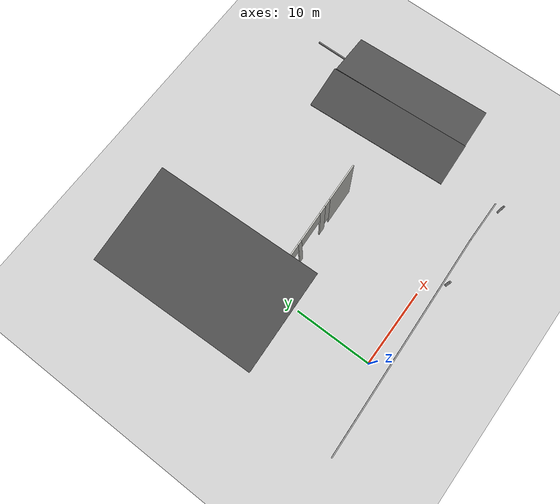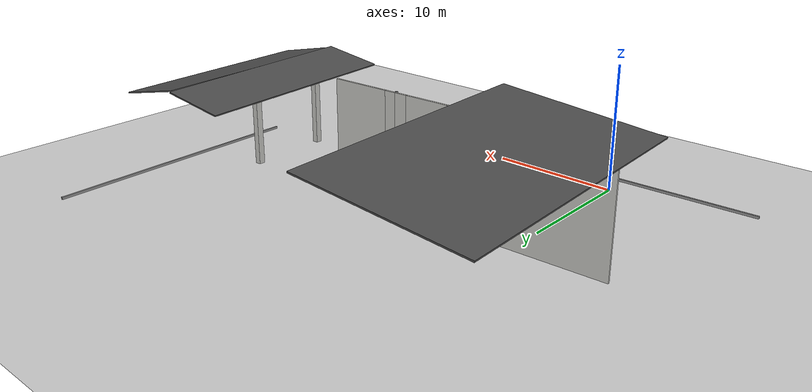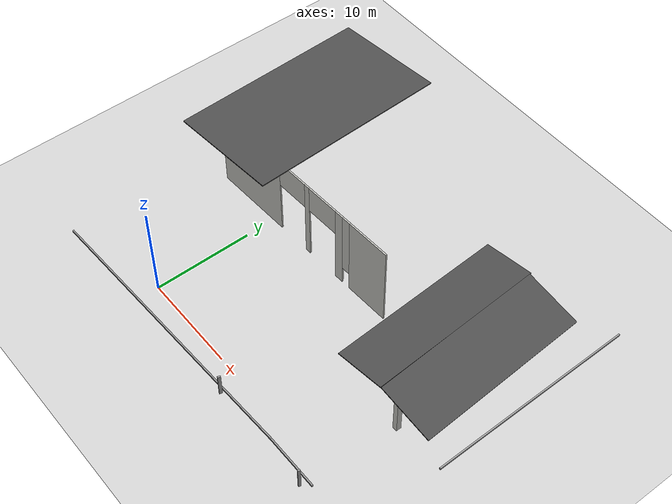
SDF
<sdf version="1.7">
 <world name="default">
  <model name="ground_plane">
   <static>1</static>
   <link name="link">
    <collision name="collision">
     <geometry><plane><normal>0 0 1</normal><size>100 100</size></plane></geometry>
     <surface><friction><ode><mu>100</mu><mu2>50</mu2></ode></friction></surface>
    </collision>
    <visual name="visual">
     <cast_shadows>0</cast_shadows>
     <geometry><plane><normal>0 0 1</normal><size>100 100</size></plane></geometry>
     <material>
      <script><uri>file://media/materials/scripts/gazebo.material</uri><name>Gazebo/Grey</name></script>
     </material>
    </visual>
   </link>
  </model>
  <model name="vehicle_test1">
   <pose>1.6419 -2.1357 0 0 -0 0</pose>
   <link name="Wall_132">
    <collision name="Wall_132_Collision">
     <geometry><box><size>21.3 0.15 0.2</size></box></geometry>
     <pose>0 0 0.1 0 -0 0</pose>
    </collision>
    <visual name="Wall_132_Visual">
     <pose>0 0 0.1 0 -0 0</pose>
     <geometry><box><size>21.3 0.15 0.2</size></box></geometry>
     <material>
      <script><uri>file://media/materials/scripts/gazebo.material</uri><name>Gazebo/Grey</name></script>
      <ambient>1 1 1 1</ambient>
     </material>
     <meta><layer>0</layer></meta>
    </visual>
    <pose>28.2981 20.4482 0 0 -0 -1.56134</pose>
   </link>
   <link name="Wall_162">
    <collision name="Wall_162_Collision">
     <geometry><box><size>0.3 0.15 2.5</size></box></geometry>
     <pose>0 0 1.25 0 -0 0</pose>
    </collision>
    <visual name="Wall_162_Visual">
     <pose>0 0 1.25 0 -0 0</pose>
     <geometry><box><size>0.3 0.15 2.5</size></box></geometry>
     <material>
      <script><uri>file://media/materials/scripts/gazebo.material</uri><name>Gazebo/Grey</name></script>
      <ambient>1 1 1 1</ambient>
     </material>
     <meta><layer>0</layer></meta>
    </visual>
    <pose>11.1477 0.054935 0 0 -0 1.309</pose>
   </link>
   <link name="Wall_166">
    <collision name="Wall_166_Collision">
     <geometry><box><size>0.25 0.15 2.5</size></box></geometry>
     <pose>0 0 1.25 0 -0 0</pose>
    </collision>
    <visual name="Wall_166_Visual">
     <pose>0 0 1.25 0 -0 0</pose>
     <geometry><box><size>0.25 0.15 2.5</size></box></geometry>
     <material>
      <script><uri>file://media/materials/scripts/gazebo.material</uri><name>Gazebo/Grey</name></script>
      <ambient>1 1 1 1</ambient>
     </material>
     <meta><layer>0</layer></meta>
    </visual>
    <pose>22.414 -0.100786 0 0 -0 -1.8326</pose>
   </link>
   <link name="Wall_29">
    <collision name="Wall_29_Collision">
     <geometry><box><size>5.75 0.15 0.2</size></box></geometry>
     <pose>0 0 0.1 0 -0 0</pose>
    </collision>
    <visual name="Wall_29_Visual">
     <pose>0 0 0.1 0 -0 0</pose>
     <geometry><box><size>5.75 0.15 0.2</size></box></geometry>
     <material>
      <script><uri>file://media/materials/scripts/gazebo.material</uri><name>Gazebo/Grey</name></script>
      <ambient>1 1 1 1</ambient>
     </material>
     <meta><layer>0</layer></meta>
    </visual>
    <pose>20.2731 0.673168 0 0 -0 3.14159</pose>
   </link>
   <link name="Wall_3">
    <pose>2.4971 15.4982 0 0 -0 -3.09698</pose>
    <visual name="Wall_3_Visual_0">
     <pose>-8.9631 0 4.5 0 -0 0</pose>
     <geometry><box><size>4.64611 0.15 9</size></box></geometry>
     <material>
      <script><uri>file://media/materials/scripts/gazebo.material</uri><name>Gazebo/CeilingTiled</name></script>
      <ambient>1 1 1 1</ambient>
     </material>
     <meta><layer>0</layer></meta>
    </visual>
    <collision name="Wall_3_Collision_0">
     <geometry><box><size>4.64611 0.15 9</size></box></geometry>
     <pose>-8.9631 0 4.5 0 -0 0</pose>
    </collision>
    <visual name="Wall_3_Visual_1">
     <pose>-5.24951 0 4.5 0 -0 0</pose>
     <geometry><box><size>0.981076 0.15 9</size></box></geometry>
     <material>
      <script><uri>file://media/materials/scripts/gazebo.material</uri><name>Gazebo/CeilingTiled</name></script>
      <ambient>1 1 1 1</ambient>
     </material>
     <meta><layer>0</layer></meta>
    </visual>
    <collision name="Wall_3_Collision_1">
     <geometry><box><size>0.981076 0.15 9</size></box></geometry>
     <pose>-5.24951 0 4.5 0 -0 0</pose>
    </collision>
    <visual name="Wall_3_Visual_2">
     <pose>-0.949814 0 4.5 0 -0 0</pose>
     <geometry><box><size>0.618309 0.15 9</size></box></geometry>
     <material>
      <script><uri>file://media/materials/scripts/gazebo.material</uri><name>Gazebo/CeilingTiled</name></script>
      <ambient>1 1 1 1</ambient>
     </material>
     <meta><layer>0</layer></meta>
    </visual>
    <collision name="Wall_3_Collision_2">
     <geometry><box><size>0.618309 0.15 9</size></box></geometry>
     <pose>-0.949814 0 4.5 0 -0 0</pose>
    </collision>
    <visual name="Wall_3_Visual_3">
     <pose>7.07275 0 4.5 0 -0 0</pose>
     <geometry><box><size>8.42681 0.15 9</size></box></geometry>
     <material>
      <script><uri>file://media/materials/scripts/gazebo.material</uri><name>Gazebo/CeilingTiled</name></script>
      <ambient>1 1 1 1</ambient>
     </material>
     <meta><layer>0</layer></meta>
    </visual>
    <collision name="Wall_3_Collision_3">
     <geometry><box><size>8.42681 0.15 9</size></box></geometry>
     <pose>7.07275 0 4.5 0 -0 0</pose>
    </collision>
    <visual name="Wall_3_Visual_4">
     <pose>-6.19004 0 5.5 0 -0 0</pose>
     <geometry><box><size>0.9 0.15 7</size></box></geometry>
     <material>
      <script><uri>file://media/materials/scripts/gazebo.material</uri><name>Gazebo/CeilingTiled</name></script>
      <ambient>1 1 1 1</ambient>
     </material>
     <meta><layer>0</layer></meta>
    </visual>
    <collision name="Wall_3_Collision_4">
     <geometry><box><size>0.9 0.15 7</size></box></geometry>
     <pose>-6.19004 0 5.5 0 -0 0</pose>
    </collision>
    <visual name="Wall_3_Visual_5">
     <pose>-3.00897 0 7.5 0 -0 0</pose>
     <geometry><box><size>3.5 0.15 3</size></box></geometry>
     <material>
      <script><uri>file://media/materials/scripts/gazebo.material</uri><name>Gazebo/CeilingTiled</name></script>
      <ambient>1 1 1 1</ambient>
     </material>
     <meta><layer>0</layer></meta>
    </visual>
    <collision name="Wall_3_Collision_5">
     <geometry><box><size>3.5 0.15 3</size></box></geometry>
     <pose>-3.00897 0 7.5 0 -0 0</pose>
    </collision>
    <visual name="Wall_3_Visual_6">
     <pose>1.10934 0 7.5 0 -0 0</pose>
     <geometry><box><size>3.5 0.15 3</size></box></geometry>
     <material>
      <script><uri>file://media/materials/scripts/gazebo.material</uri><name>Gazebo/CeilingTiled</name></script>
      <ambient>1 1 1 1</ambient>
     </material>
     <meta><layer>0</layer></meta>
    </visual>
    <collision name="Wall_3_Collision_6">
     <geometry><box><size>3.5 0.15 3</size></box></geometry>
     <pose>1.10934 0 7.5 0 -0 0</pose>
    </collision>
   </link>
   <link name="Wall_30">
    <collision name="Wall_30_Collision">
     <geometry><box><size>29.8048 0.15 0.2</size></box></geometry>
     <pose>0 0 0.1 0 -0 0</pose>
    </collision>
    <visual name="Wall_30_Visual">
     <pose>0 0 0.1 0 -0 0</pose>
     <geometry><box><size>29.8048 0.15 0.2</size></box></geometry>
     <material>
      <script><uri>file://media/materials/scripts/gazebo.material</uri><name>Gazebo/Grey</name></script>
      <ambient>1 1 1 1</ambient>
     </material>
     <meta><layer>0</layer></meta>
    </visual>
    <pose>2.65556 0.131079 0 0 -0 -3.10502</pose>
   </link>
   <link name="Wall_41">
    <collision name="Wall_41_Collision">
     <geometry><box><size>0.5 0.5 8</size></box></geometry>
     <pose>0 0 4 0 -0 0</pose>
    </collision>
    <visual name="Wall_41_Visual">
     <pose>0 0 4 0 -0 0</pose>
     <geometry><box><size>0.5 0.5 8</size></box></geometry>
     <material>
      <script><uri>file://media/materials/scripts/gazebo.material</uri><name>Gazebo/CeilingTiled</name></script>
      <ambient>1 1 1 1</ambient>
     </material>
     <meta><layer>0</layer></meta>
    </visual>
    <pose>23.1481 9.61517 0 0 -0 0</pose>
   </link>
   <link name="Wall_43">
    <collision name="Wall_43_Collision">
     <geometry><box><size>0.51 0.5 8</size></box></geometry>
     <pose>0 0 4 0 -0 0</pose>
    </collision>
    <visual name="Wall_43_Visual">
     <pose>0 0 4 0 -0 0</pose>
     <geometry><box><size>0.51 0.5 8</size></box></geometry>
     <material>
      <script><uri>file://media/materials/scripts/gazebo.material</uri><name>Gazebo/CeilingTiled</name></script>
      <ambient>1 1 1 1</ambient>
     </material>
     <meta><layer>0</layer></meta>
    </visual>
    <pose>22.9141 16.2902 0 0 -0 1.5708</pose>
   </link>
   <static>1</static>
  </model>
  <model name="asphalt_plane_clone_clone_clone">
   <static>1</static>
   <link name="link">
    <collision name="collision"><geometry><box><size>5.06686 17.2163 0.1</size></box></geometry></collision>
    <visual name="visual">
     <cast_shadows>0</cast_shadows>
     <geometry><box><size>5.06686 17.2163 0.1</size></box></geometry>
     <material>
      <script>
       <uri>model://asphalt_plane/materials/scripts</uri>
       <uri>model://asphalt_plane/materials/textures</uri>
       <name>vrc/asphalt</name>
      </script>
     </material>
    </visual>
   </link>
   <pose>21.9414 13.8523 7.78161 -0.001943 -0.149293 0.050993</pose>
  </model>
  <model name="asphalt_plane">
   <static>1</static>
   <link name="link">
    <collision name="collision"><geometry><box><size>11.8707 20 0.1</size></box></geometry></collision>
    <visual name="visual">
     <cast_shadows>0</cast_shadows>
     <geometry><box><size>11.8707 20 0.1</size></box></geometry>
     <material>
      <script>
       <uri>model://asphalt_plane/materials/scripts</uri>
       <uri>model://asphalt_plane/materials/textures</uri>
       <name>vrc/asphalt</name>
      </script>
     </material>
    </visual>
   </link>
   <pose>-2.79925 19.6291 9.44458 -0.004475 -0.093342 0.032301</pose>
  </model>
  <model name="asphalt_plane_0">
   <static>1</static>
   <link name="link">
    <collision name="collision"><geometry><box><size>5.61466 16.9722 0.1</size></box></geometry></collision>
    <visual name="visual">
     <cast_shadows>0</cast_shadows>
     <geometry><box><size>5.61466 16.9722 0.1</size></box></geometry>
     <material>
      <script>
       <uri>model://asphalt_plane/materials/scripts</uri>
       <uri>model://asphalt_plane/materials/textures</uri>
       <name>vrc/asphalt</name>
      </script>
     </material>
    </visual>
   </link>
   <pose>27.1687 14.0454 7.56758 0.006262 0.213742 0.050269</pose>
  </model>
 </world>
</sdf>
